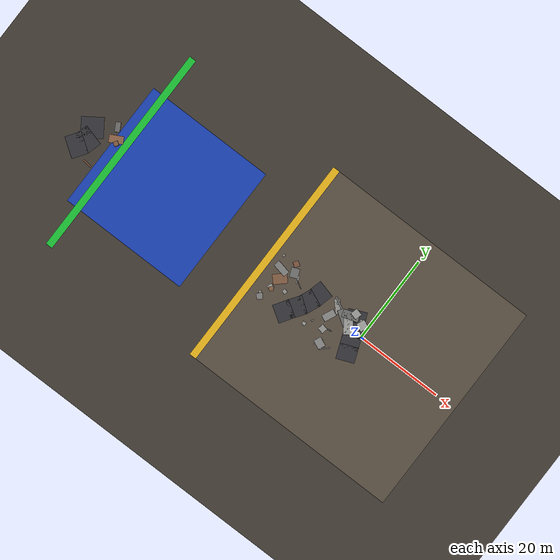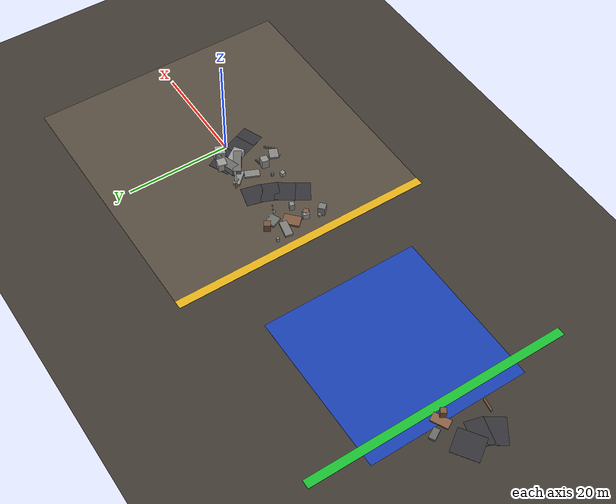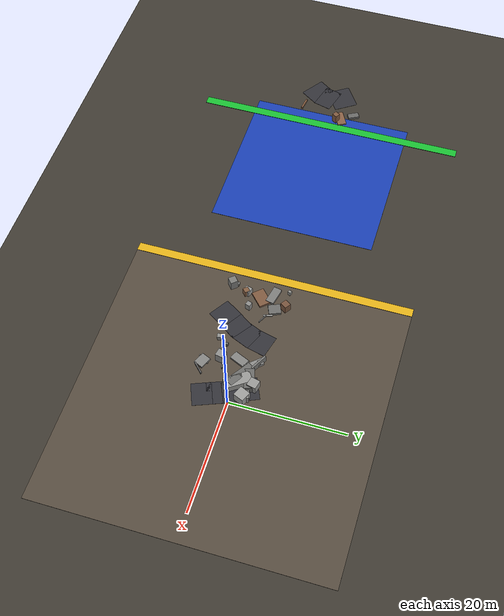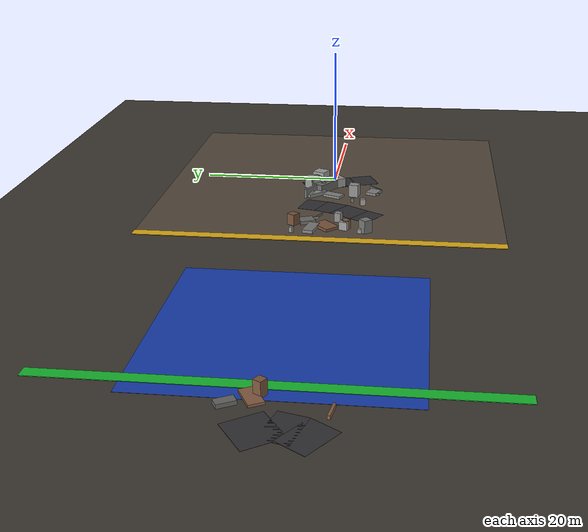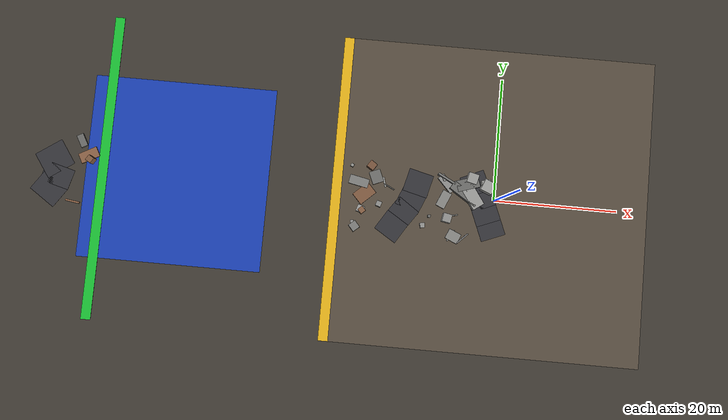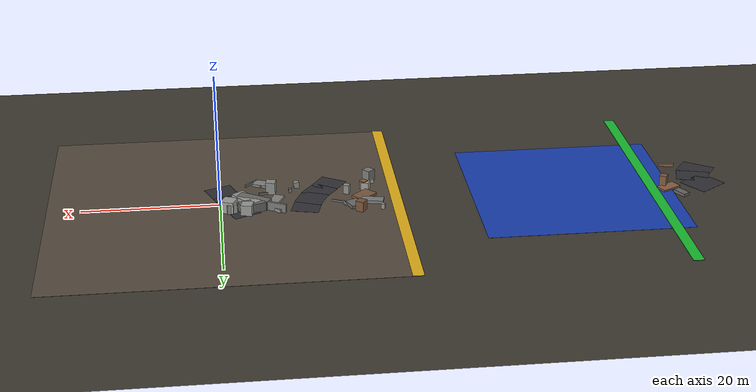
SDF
<sdf version="1.6">
 <world name="navitas_arena">
  <model name="ground_plane">
   <static>true</static>
   <link name="link">
    <collision name="collision">
     <geometry><plane><normal>0 0 1</normal><size>400 400</size></plane></geometry>
     <surface><friction><ode><mu>0.620</mu><mu2>0.620</mu2></ode></friction></surface>
    </collision>
    <visual name="visual">
     <cast_shadows>false</cast_shadows>
     <geometry><plane><normal>0 0 1</normal><size>400 400</size></plane></geometry>
     <material><ambient>0.250 0.230 0.200 1</ambient><diffuse>0.250 0.230 0.200 1</diffuse></material>
    </visual>
   </link>
  </model>
  <model name="landing">
   <static>true</static>
   <pose>-52.000 0.000 0.010 0 0 0.000</pose>
   <link name="link">
    <collision name="col"><geometry><box><size>30.000 30.000 0.020</size></box></geometry></collision>
    <visual name="vis">
     <geometry><box><size>30.000 30.000 0.020</size></box></geometry>
     <material><ambient>0.10 0.25 0.70 1</ambient><diffuse>0.10 0.25 0.70 1</diffuse></material>
    </visual>
   </link>
  </model>
  <model name="brd_kolay_E">
   <static>true</static>
   <pose>-64.200 0.000 0.040 0 0 0.000</pose>
   <link name="link">
    <collision name="col"><geometry><box><size>1.600 50.000 0.080</size></box></geometry></collision>
    <visual name="vis">
     <geometry><box><size>1.600 50.000 0.080</size></box></geometry>
     <material><ambient>0.10 0.75 0.20 1</ambient><diffuse>0.10 0.75 0.20 1</diffuse></material>
    </visual>
   </link>
  </model>
  <model name="road_kolay_3_8">
   <static>true</static>
   <pose>-72.608 -4.500 0.040 0 0 0.971</pose>
   <link name="link">
    <collision name="col"><geometry><box><size>3.726 4.920 0.020</size></box></geometry></collision>
    <visual name="vis">
     <geometry><box><size>3.726 4.920 0.020</size></box></geometry>
     <material><ambient>0.20 0.20 0.22 1</ambient><diffuse>0.20 0.20 0.22 1</diffuse></material>
    </visual>
   </link>
  </model>
  <model name="road_kolay_3_9">
   <static>true</static>
   <pose>-71.494 -2.167 0.040 0 0 1.306</pose>
   <link name="link">
    <collision name="col"><geometry><box><size>3.318 4.920 0.020</size></box></geometry></collision>
    <visual name="vis">
     <geometry><box><size>3.318 4.920 0.020</size></box></geometry>
     <material><ambient>0.20 0.20 0.22 1</ambient><diffuse>0.20 0.20 0.22 1</diffuse></material>
    </visual>
   </link>
  </model>
  <model name="road_kolay_3_10">
   <static>true</static>
   <pose>-72.211 0.500 0.040 0 0 2.174</pose>
   <link name="link">
    <collision name="col"><geometry><box><size>4.544 4.920 0.020</size></box></geometry></collision>
    <visual name="vis">
     <geometry><box><size>4.544 4.920 0.020</size></box></geometry>
     <material><ambient>0.20 0.20 0.22 1</ambient><diffuse>0.20 0.20 0.22 1</diffuse></material>
    </visual>
   </link>
  </model>
  <model name="deb_kolay_28">
   <static>true</static>
   <pose>-68.467 -6.210 0.201 0 0 2.995</pose>
   <link name="link">
    <collision name="col"><geometry><box><size>2.306 0.297 0.403</size></box></geometry></collision>
    <visual name="vis">
     <geometry><box><size>2.306 0.297 0.403</size></box></geometry>
     <material><ambient>0.53 0.37 0.26 1</ambient><diffuse>0.53 0.37 0.26 1</diffuse></material>
    </visual>
   </link>
  </model>
  <model name="deb_kolay_39">
   <static>true</static>
   <pose>-66.054 0.812 0.882 0 0 2.578</pose>
   <link name="link">
    <collision name="col"><geometry><box><size>1.001 1.001 1.763</size></box></geometry></collision>
    <visual name="vis">
     <geometry><box><size>1.001 1.001 1.763</size></box></geometry>
     <material><ambient>0.50 0.35 0.25 1</ambient><diffuse>0.50 0.35 0.25 1</diffuse></material>
    </visual>
   </link>
  </model>
  <model name="deb_kolay_122">
   <static>true</static>
   <pose>-67.992 3.847 0.231 0 0 2.068</pose>
   <link name="link">
    <collision name="col"><geometry><box><size>2.113 1.129 0.462</size></box></geometry></collision>
    <visual name="vis">
     <geometry><box><size>2.113 1.129 0.462</size></box></geometry>
     <material><ambient>0.41 0.41 0.40 1</ambient><diffuse>0.41 0.41 0.40 1</diffuse></material>
    </visual>
   </link>
  </model>
  <model name="deb_kolay_168">
   <static>true</static>
   <pose>-66.654 1.567 0.140 0 0 0.491</pose>
   <link name="link">
    <collision name="col"><geometry><box><size>3.166 1.694 0.280</size></box></geometry></collision>
    <visual name="vis">
     <geometry><box><size>3.166 1.694 0.280</size></box></geometry>
     <material><ambient>0.54 0.38 0.27 1</ambient><diffuse>0.54 0.38 0.27 1</diffuse></material>
    </visual>
   </link>
  </model>
  <model name="gd_orta">
   <static>true</static>
   <pose>0.000 0.000 0.010 0 0 0.000</pose>
   <link name="link">
    <collision name="col"><geometry><box><size>50.000 50.000 0.020</size></box></geometry></collision>
    <visual name="vis">
     <geometry><box><size>50.000 50.000 0.020</size></box></geometry>
     <material><ambient>0.34 0.30 0.25 1</ambient><diffuse>0.34 0.30 0.25 1</diffuse></material>
    </visual>
   </link>
  </model>
  <model name="brd_orta_W">
   <static>true</static>
   <pose>-25.800 0.000 0.040 0 0 0.000</pose>
   <link name="link">
    <collision name="col"><geometry><box><size>1.600 50.000 0.080</size></box></geometry></collision>
    <visual name="vis">
     <geometry><box><size>1.600 50.000 0.080</size></box></geometry>
     <material><ambient>0.90 0.70 0.10 1</ambient><diffuse>0.90 0.70 0.10 1</diffuse></material>
    </visual>
   </link>
  </model>
  <model name="road_orta_1_11">
   <static>true</static>
   <pose>-16.342 -5.667 0.040 0 0 1.008</pose>
   <link name="link">
    <collision name="col"><geometry><box><size>3.659 4.100 0.020</size></box></geometry></collision>
    <visual name="vis">
     <geometry><box><size>3.659 4.100 0.020</size></box></geometry>
     <material><ambient>0.20 0.20 0.22 1</ambient><diffuse>0.20 0.20 0.22 1</diffuse></material>
    </visual>
   </link>
  </model>
  <model name="road_orta_1_12">
   <static>true</static>
   <pose>-14.792 -3.333 0.040 0 0 0.962</pose>
   <link name="link">
    <collision name="col"><geometry><box><size>3.745 4.100 0.020</size></box></geometry></collision>
    <visual name="vis">
     <geometry><box><size>3.745 4.100 0.020</size></box></geometry>
     <material><ambient>0.20 0.20 0.22 1</ambient><diffuse>0.20 0.20 0.22 1</diffuse></material>
    </visual>
   </link>
  </model>
  <model name="road_orta_1_13">
   <static>true</static>
   <pose>-13.437 -0.883 0.040 0 0 1.171</pose>
   <link name="link">
    <collision name="col"><geometry><box><size>3.686 4.100 0.020</size></box></geometry></collision>
    <visual name="vis">
     <geometry><box><size>3.686 4.100 0.020</size></box></geometry>
     <material><ambient>0.20 0.20 0.22 1</ambient><diffuse>0.20 0.20 0.22 1</diffuse></material>
    </visual>
   </link>
  </model>
  <model name="road_orta_1_14">
   <static>true</static>
   <pose>-12.540 1.800 0.040 0 0 1.323</pose>
   <link name="link">
    <collision name="col"><geometry><box><size>3.789 4.100 0.020</size></box></geometry></collision>
    <visual name="vis">
     <geometry><box><size>3.789 4.100 0.020</size></box></geometry>
     <material><ambient>0.20 0.20 0.22 1</ambient><diffuse>0.20 0.20 0.22 1</diffuse></material>
    </visual>
   </link>
  </model>
  <model name="road_orta_2_7">
   <static>true</static>
   <pose>-0.300 -4.500 0.040 0 0 1.951</pose>
   <link name="link">
    <collision name="col"><geometry><box><size>3.413 4.100 0.020</size></box></geometry></collision>
    <visual name="vis">
     <geometry><box><size>3.413 4.100 0.020</size></box></geometry>
     <material><ambient>0.20 0.20 0.22 1</ambient><diffuse>0.20 0.20 0.22 1</diffuse></material>
    </visual>
   </link>
  </model>
  <model name="road_orta_2_8">
   <static>true</static>
   <pose>-1.232 -2.167 0.040 0 0 1.951</pose>
   <link name="link">
    <collision name="col"><geometry><box><size>3.412 4.100 0.020</size></box></geometry></collision>
    <visual name="vis">
     <geometry><box><size>3.412 4.100 0.020</size></box></geometry>
     <material><ambient>0.20 0.20 0.22 1</ambient><diffuse>0.20 0.20 0.22 1</diffuse></material>
    </visual>
   </link>
  </model>
  <model name="road_orta_2_9">
   <static>true</static>
   <pose>-2.217 0.167 0.040 0 0 1.990</pose>
   <link name="link">
    <collision name="col"><geometry><box><size>3.454 4.100 0.020</size></box></geometry></collision>
    <visual name="vis">
     <geometry><box><size>3.454 4.100 0.020</size></box></geometry>
     <material><ambient>0.20 0.20 0.22 1</ambient><diffuse>0.20 0.20 0.22 1</diffuse></material>
    </visual>
   </link>
  </model>
  <model name="road_orta_2_10">
   <static>true</static>
   <pose>-3.255 2.500 0.040 0 0 1.989</pose>
   <link name="link">
    <collision name="col"><geometry><box><size>3.453 4.100 0.020</size></box></geometry></collision>
    <visual name="vis">
     <geometry><box><size>3.453 4.100 0.020</size></box></geometry>
     <material><ambient>0.20 0.20 0.22 1</ambient><diffuse>0.20 0.20 0.22 1</diffuse></material>
    </visual>
   </link>
  </model>
  <model name="blk_orta_2_1_0">
   <static>true</static>
   <pose>-4.577 2.262 0.675 0 0 0.311</pose>
   <link name="link">
    <collision name="col"><geometry><box><size>3.697 1.804 1.350</size></box></geometry></collision>
    <visual name="vis">
     <geometry><box><size>3.697 1.804 1.350</size></box></geometry>
     <material><ambient>0.42 0.42 0.41 1</ambient><diffuse>0.42 0.42 0.41 1</diffuse></material>
    </visual>
   </link>
  </model>
  <model name="blk_orta_2_1_1">
   <static>true</static>
   <pose>-3.886 0.553 0.675 0 0 2.180</pose>
   <link name="link">
    <collision name="col"><geometry><box><size>4.563 2.037 1.350</size></box></geometry></collision>
    <visual name="vis">
     <geometry><box><size>4.563 2.037 1.350</size></box></geometry>
     <material><ambient>0.60 0.60 0.59 1</ambient><diffuse>0.60 0.60 0.59 1</diffuse></material>
    </visual>
   </link>
  </model>
  <model name="blk_orta_2_1_2">
   <static>true</static>
   <pose>-3.857 3.223 0.807 0 0 2.902</pose>
   <link name="link">
    <collision name="col"><geometry><box><size>1.652 1.652 1.614</size></box></geometry></collision>
    <visual name="vis">
     <geometry><box><size>1.652 1.652 1.614</size></box></geometry>
     <material><ambient>0.60 0.60 0.59 1</ambient><diffuse>0.60 0.60 0.59 1</diffuse></material>
    </visual>
   </link>
  </model>
  <model name="blk_orta_2_1_3">
   <static>true</static>
   <pose>-4.965 0.602 0.675 0 0 2.569</pose>
   <link name="link">
    <collision name="col"><geometry><box><size>4.987 1.481 1.350</size></box></geometry></collision>
    <visual name="vis">
     <geometry><box><size>4.987 1.481 1.350</size></box></geometry>
     <material><ambient>0.43 0.43 0.42 1</ambient><diffuse>0.43 0.43 0.42 1</diffuse></material>
    </visual>
   </link>
  </model>
  <model name="blk_orta_2_1_4">
   <static>true</static>
   <pose>-1.302 2.058 0.892 0 0 1.166</pose>
   <link name="link">
    <collision name="col"><geometry><box><size>1.902 1.902 1.783</size></box></geometry></collision>
    <visual name="vis">
     <geometry><box><size>1.902 1.902 1.783</size></box></geometry>
     <material><ambient>0.62 0.62 0.61 1</ambient><diffuse>0.62 0.62 0.61 1</diffuse></material>
    </visual>
   </link>
  </model>
  <model name="blk_orta_2_1_5">
   <static>true</static>
   <pose>-1.546 2.425 0.704 0 0 0.256</pose>
   <link name="link">
    <collision name="col"><geometry><box><size>1.470 1.470 1.407</size></box></geometry></collision>
    <visual name="vis">
     <geometry><box><size>1.470 1.470 1.407</size></box></geometry>
     <material><ambient>0.61 0.61 0.60 1</ambient><diffuse>0.61 0.61 0.60 1</diffuse></material>
    </visual>
   </link>
  </model>
  <model name="deb_orta_6">
   <static>true</static>
   <pose>-6.733 -3.000 0.188 0 0 0.156</pose>
   <link name="link">
    <collision name="col"><geometry><box><size>1.959 0.213 0.377</size></box></geometry></collision>
    <visual name="vis">
     <geometry><box><size>1.959 0.213 0.377</size></box></geometry>
     <material><ambient>0.41 0.41 0.40 1</ambient><diffuse>0.41 0.41 0.40 1</diffuse></material>
    </visual>
   </link>
  </model>
  <model name="deb_orta_15">
   <static>true</static>
   <pose>-6.621 -6.291 0.174 0 0 1.026</pose>
   <link name="link">
    <collision name="col"><geometry><box><size>2.124 0.201 0.349</size></box></geometry></collision>
    <visual name="vis">
     <geometry><box><size>2.124 0.201 0.349</size></box></geometry>
     <material><ambient>0.54 0.54 0.53 1</ambient><diffuse>0.54 0.54 0.53 1</diffuse></material>
    </visual>
   </link>
  </model>
  <model name="deb_orta_18">
   <static>true</static>
   <pose>-18.049 1.446 0.129 0 0 1.856</pose>
   <link name="link">
    <collision name="col"><geometry><box><size>1.619 0.280 0.258</size></box></geometry></collision>
    <visual name="vis">
     <geometry><box><size>1.619 0.280 0.258</size></box></geometry>
     <material><ambient>0.61 0.61 0.60 1</ambient><diffuse>0.61 0.61 0.60 1</diffuse></material>
    </visual>
   </link>
  </model>
  <model name="deb_orta_29">
   <static>true</static>
   <pose>-22.403 -6.196 0.922 0 0 0.706</pose>
   <link name="link">
    <collision name="col"><geometry><box><size>1.305 1.305 1.844</size></box></geometry></collision>
    <visual name="vis">
     <geometry><box><size>1.305 1.305 1.844</size></box></geometry>
     <material><ambient>0.48 0.48 0.47 1</ambient><diffuse>0.48 0.48 0.47 1</diffuse></material>
    </visual>
   </link>
  </model>
  <model name="deb_orta_42">
   <static>true</static>
   <pose>-22.222 1.223 0.240 0 0 2.937</pose>
   <link name="link">
    <collision name="col"><geometry><box><size>3.219 1.467 0.479</size></box></geometry></collision>
    <visual name="vis">
     <geometry><box><size>3.219 1.467 0.479</size></box></geometry>
     <material><ambient>0.49 0.49 0.48 1</ambient><diffuse>0.49 0.49 0.48 1</diffuse></material>
    </visual>
   </link>
  </model>
  <model name="deb_orta_43">
   <static>true</static>
   <pose>-19.460 2.191 0.252 0 0 0.402</pose>
   <link name="link">
    <collision name="col"><geometry><box><size>1.851 2.126 0.503</size></box></geometry></collision>
    <visual name="vis">
     <geometry><box><size>1.851 2.126 0.503</size></box></geometry>
     <material><ambient>0.43 0.43 0.42 1</ambient><diffuse>0.43 0.43 0.42 1</diffuse></material>
    </visual>
   </link>
  </model>
  <model name="deb_orta_73">
   <static>true</static>
   <pose>-10.399 -3.455 0.312 0 0 1.542</pose>
   <link name="link">
    <collision name="col"><geometry><box><size>0.450 0.450 0.624</size></box></geometry></collision>
    <visual name="vis">
     <geometry><box><size>0.450 0.450 0.624</size></box></geometry>
     <material><ambient>0.42 0.42 0.41 1</ambient><diffuse>0.42 0.42 0.41 1</diffuse></material>
    </visual>
   </link>
  </model>
  <model name="deb_orta_74">
   <static>true</static>
   <pose>-8.318 2.757 0.399 0 0 0.337</pose>
   <link name="link">
    <collision name="col"><geometry><box><size>0.554 0.554 0.798</size></box></geometry></collision>
    <visual name="vis">
     <geometry><box><size>0.554 0.554 0.798</size></box></geometry>
     <material><ambient>0.57 0.57 0.56 1</ambient><diffuse>0.57 0.57 0.56 1</diffuse></material>
    </visual>
   </link>
  </model>
  <model name="deb_orta_94">
   <static>true</static>
   <pose>-7.588 -3.567 0.922 0 0 1.385</pose>
   <link name="link">
    <collision name="col"><geometry><box><size>1.385 1.385 1.844</size></box></geometry></collision>
    <visual name="vis">
     <geometry><box><size>1.385 1.385 1.844</size></box></geometry>
     <material><ambient>0.56 0.56 0.55 1</ambient><diffuse>0.56 0.56 0.55 1</diffuse></material>
    </visual>
   </link>
  </model>
  <model name="deb_orta_107">
   <static>true</static>
   <pose>-6.232 -6.381 0.198 0 0 2.726</pose>
   <link name="link">
    <collision name="col"><geometry><box><size>2.135 1.701 0.396</size></box></geometry></collision>
    <visual name="vis">
     <geometry><box><size>2.135 1.701 0.396</size></box></geometry>
     <material><ambient>0.52 0.52 0.51 1</ambient><diffuse>0.52 0.52 0.51 1</diffuse></material>
    </visual>
   </link>
  </model>
  <model name="deb_orta_115">
   <static>true</static>
   <pose>-7.902 2.101 0.269 0 0 2.315</pose>
   <link name="link">
    <collision name="col"><geometry><box><size>3.175 1.206 0.537</size></box></geometry></collision>
    <visual name="vis">
     <geometry><box><size>3.175 1.206 0.537</size></box></geometry>
     <material><ambient>0.55 0.55 0.54 1</ambient><diffuse>0.55 0.55 0.54 1</diffuse></material>
    </visual>
   </link>
  </model>
  <model name="deb_orta_144">
   <static>true</static>
   <pose>-4.700 -6.597 0.220 0 0 0.772</pose>
   <link name="link">
    <collision name="col"><geometry><box><size>2.347 0.225 0.441</size></box></geometry></collision>
    <visual name="vis">
     <geometry><box><size>2.347 0.225 0.441</size></box></geometry>
     <material><ambient>0.43 0.43 0.43 1</ambient><diffuse>0.43 0.43 0.43 1</diffuse></material>
    </visual>
   </link>
  </model>
  <model name="deb_orta_158">
   <static>true</static>
   <pose>-11.396 -5.053 0.451 0 0 1.710</pose>
   <link name="link">
    <collision name="col"><geometry><box><size>0.777 0.777 0.901</size></box></geometry></collision>
    <visual name="vis">
     <geometry><box><size>0.777 0.777 0.901</size></box></geometry>
     <material><ambient>0.57 0.57 0.56 1</ambient><diffuse>0.57 0.57 0.56 1</diffuse></material>
    </visual>
   </link>
  </model>
  <model name="deb_orta_159">
   <static>true</static>
   <pose>-21.636 -3.268 0.602 0 0 2.815</pose>
   <link name="link">
    <collision name="col"><geometry><box><size>1.153 1.153 1.204</size></box></geometry></collision>
    <visual name="vis">
     <geometry><box><size>1.153 1.153 1.204</size></box></geometry>
     <material><ambient>0.61 0.61 0.60 1</ambient><diffuse>0.61 0.61 0.60 1</diffuse></material>
    </visual>
   </link>
  </model>
  <model name="deb_orta_171">
   <static>true</static>
   <pose>-6.076 -6.583 0.122 0 0 0.222</pose>
   <link name="link">
    <collision name="col"><geometry><box><size>2.135 0.182 0.244</size></box></geometry></collision>
    <visual name="vis">
     <geometry><box><size>2.135 0.182 0.244</size></box></geometry>
     <material><ambient>0.42 0.42 0.41 1</ambient><diffuse>0.42 0.42 0.41 1</diffuse></material>
    </visual>
   </link>
  </model>
  <model name="deb_orta_187">
   <static>true</static>
   <pose>-22.816 -5.419 0.282 0 0 3.045</pose>
   <link name="link">
    <collision name="col"><geometry><box><size>0.530 0.530 0.565</size></box></geometry></collision>
    <visual name="vis">
     <geometry><box><size>0.530 0.530 0.565</size></box></geometry>
     <material><ambient>0.56 0.56 0.55 1</ambient><diffuse>0.56 0.56 0.55 1</diffuse></material>
    </visual>
   </link>
  </model>
  <model name="deb_orta_199">
   <static>true</static>
   <pose>-8.217 -0.512 0.198 0 0 1.155</pose>
   <link name="link">
    <collision name="col"><geometry><box><size>2.795 1.524 0.397</size></box></geometry></collision>
    <visual name="vis">
     <geometry><box><size>2.795 1.524 0.397</size></box></geometry>
     <material><ambient>0.52 0.52 0.51 1</ambient><diffuse>0.52 0.52 0.51 1</diffuse></material>
    </visual>
   </link>
  </model>
  <model name="deb_orta_202">
   <static>true</static>
   <pose>-21.401 -3.472 0.648 0 0 0.744</pose>
   <link name="link">
    <collision name="col"><geometry><box><size>0.935 0.935 1.295</size></box></geometry></collision>
    <visual name="vis">
     <geometry><box><size>0.935 0.935 1.295</size></box></geometry>
     <material><ambient>0.52 0.37 0.26 1</ambient><diffuse>0.52 0.37 0.26 1</diffuse></material>
    </visual>
   </link>
  </model>
  <model name="deb_orta_207">
   <static>true</static>
   <pose>-17.181 0.752 0.152 0 0 2.671</pose>
   <link name="link">
    <collision name="col"><geometry><box><size>1.877 0.151 0.305</size></box></geometry></collision>
    <visual name="vis">
     <geometry><box><size>1.877 0.151 0.305</size></box></geometry>
     <material><ambient>0.44 0.44 0.43 1</ambient><diffuse>0.44 0.44 0.43 1</diffuse></material>
    </visual>
   </link>
  </model>
  <model name="deb_orta_209">
   <static>true</static>
   <pose>-20.319 3.894 0.780 0 0 0.977</pose>
   <link name="link">
    <collision name="col"><geometry><box><size>1.233 1.233 1.559</size></box></geometry></collision>
    <visual name="vis">
     <geometry><box><size>1.233 1.233 1.559</size></box></geometry>
     <material><ambient>0.47 0.33 0.24 1</ambient><diffuse>0.47 0.33 0.24 1</diffuse></material>
    </visual>
   </link>
  </model>
  <model name="deb_orta_214">
   <static>true</static>
   <pose>-23.519 3.746 0.398 0 0 1.117</pose>
   <link name="link">
    <collision name="col"><geometry><box><size>0.497 0.497 0.797</size></box></geometry></collision>
    <visual name="vis">
     <geometry><box><size>0.497 0.497 0.797</size></box></geometry>
     <material><ambient>0.57 0.57 0.55 1</ambient><diffuse>0.57 0.57 0.55 1</diffuse></material>
    </visual>
   </link>
  </model>
  <model name="deb_orta_218">
   <static>true</static>
   <pose>-21.180 -0.669 0.201 0 0 0.745</pose>
   <link name="link">
    <collision name="col"><geometry><box><size>3.160 2.184 0.401</size></box></geometry></collision>
    <visual name="vis">
     <geometry><box><size>3.160 2.184 0.401</size></box></geometry>
     <material><ambient>0.50 0.35 0.25 1</ambient><diffuse>0.50 0.35 0.25 1</diffuse></material>
    </visual>
   </link>
  </model>
  <model name="chic_orta_4">
   <static>true</static>
   <pose>-18.732 -2.216 0.675 0 0 1.235</pose>
   <link name="link">
    <collision name="col"><geometry><box><size>0.866 0.866 1.350</size></box></geometry></collision>
    <visual name="vis">
     <geometry><box><size>0.866 0.866 1.350</size></box></geometry>
     <material><ambient>0.55 0.55 0.54 1</ambient><diffuse>0.55 0.55 0.54 1</diffuse></material>
    </visual>
   </link>
  </model>
  <model name="chic_orta_5">
   <static>true</static>
   <pose>-8.027 2.818 0.675 0 0 2.657</pose>
   <link name="link">
    <collision name="col"><geometry><box><size>3.172 0.343 1.350</size></box></geometry></collision>
    <visual name="vis">
     <geometry><box><size>3.172 0.343 1.350</size></box></geometry>
     <material><ambient>0.47 0.47 0.46 1</ambient><diffuse>0.47 0.47 0.46 1</diffuse></material>
    </visual>
   </link>
  </model>
 </world>
</sdf>
